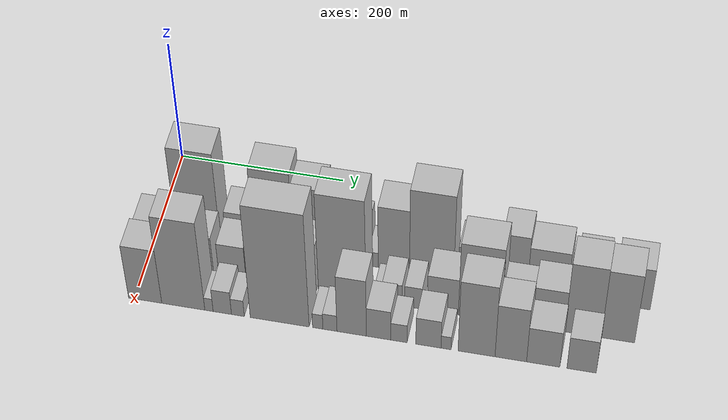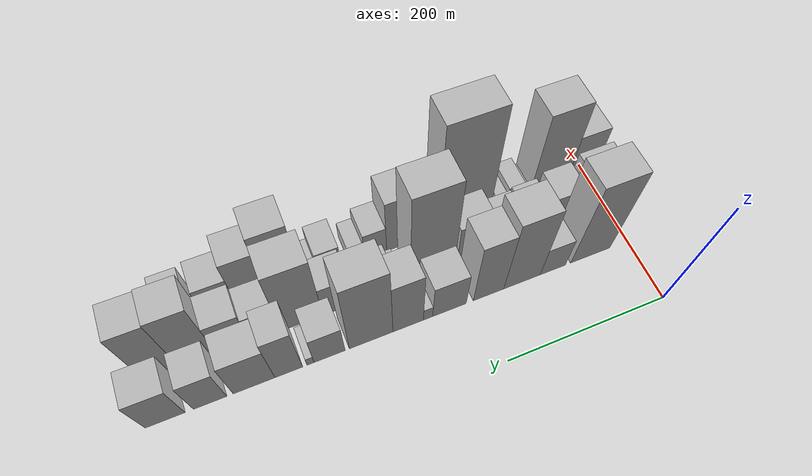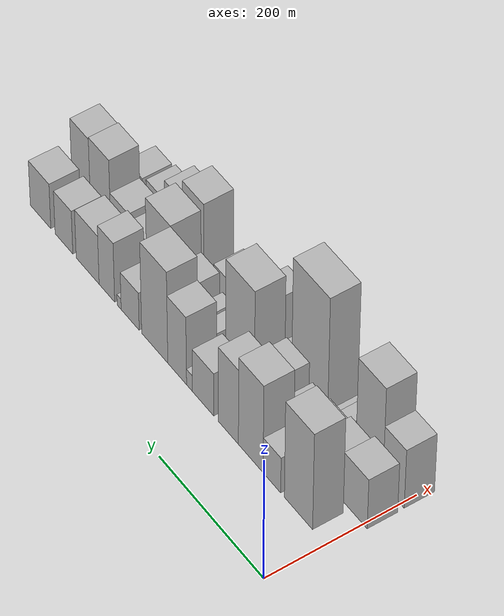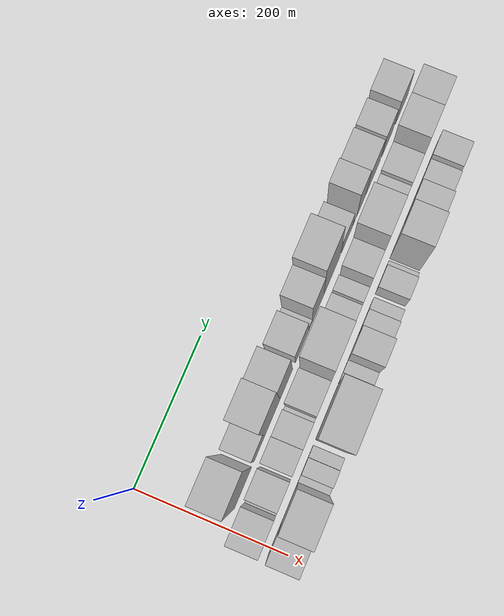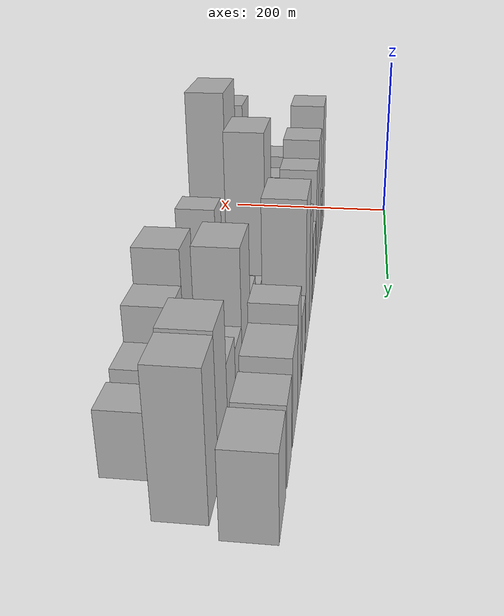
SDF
<sdf version="1.6">
 <world name="default">
  <model name="building_17">
   <static>1</static>
   <pose>100.0000 51.1494 0 0.000000 0.000000 0.000000</pose>
   <link name="link">
    <pose>0 0 81.00 0 0 0</pose>
    <collision name="collision"><geometry><box><size>40.0000 53.2891 162.0000</size></box></geometry></collision>
    <visual name="visual">
     <cast_shadows>0</cast_shadows>
     <geometry><box><size>40.0000 53.2891 162.0000</size></box></geometry>
     <material>
      <script>
       <uri>model://HANNAS_wall/materials/scripts</uri>
       <uri>model://HANNAS_wall/materials/textures</uri>
       <name>vrc/HANNAS_wall</name>
      </script>
     </material>
    </visual>
   </link>
  </model>
  <model name="building_18">
   <static>1</static>
   <pose>100.0000 101.5394 0 0.000000 0.000000 0.000000</pose>
   <link name="link">
    <pose>0 0 30.00 0 0 0</pose>
    <collision name="collision"><geometry><box><size>40.0000 33.4910 60.0000</size></box></geometry></collision>
    <visual name="visual">
     <cast_shadows>0</cast_shadows>
     <geometry><box><size>40.0000 33.4910 60.0000</size></box></geometry>
     <material>
      <script>
       <uri>model://HANNAS_wall/materials/scripts</uri>
       <uri>model://HANNAS_wall/materials/textures</uri>
       <name>vrc/HANNAS_wall</name>
      </script>
     </material>
    </visual>
   </link>
  </model>
  <model name="building_19">
   <static>1</static>
   <pose>100.0000 142.0829 0 0.000000 0.000000 0.000000</pose>
   <link name="link">
    <pose>0 0 73.50 0 0 0</pose>
    <collision name="collision"><geometry><box><size>40.0000 47.5960 147.0000</size></box></geometry></collision>
    <visual name="visual">
     <cast_shadows>0</cast_shadows>
     <geometry><box><size>40.0000 47.5960 147.0000</size></box></geometry>
     <material>
      <script>
       <uri>model://HANNAS_wall/materials/scripts</uri>
       <uri>model://HANNAS_wall/materials/textures</uri>
       <name>vrc/HANNAS_wall</name>
      </script>
     </material>
    </visual>
   </link>
  </model>
  <model name="building_20">
   <static>1</static>
   <pose>100.0000 185.3595 0 0.000000 0.000000 0.000000</pose>
   <link name="link">
    <pose>0 0 63.00 0 0 0</pose>
    <collision name="collision"><geometry><box><size>40.0000 38.9573 126.0000</size></box></geometry></collision>
    <visual name="visual">
     <cast_shadows>0</cast_shadows>
     <geometry><box><size>40.0000 38.9573 126.0000</size></box></geometry>
     <material>
      <script>
       <uri>model://HANNAS_wall/materials/scripts</uri>
       <uri>model://HANNAS_wall/materials/textures</uri>
       <name>vrc/HANNAS_wall</name>
      </script>
     </material>
    </visual>
   </link>
  </model>
  <model name="building_21">
   <static>1</static>
   <pose>100.0000 234.8111 0 0.000000 0.000000 0.000000</pose>
   <link name="link">
    <pose>0 0 36.00 0 0 0</pose>
    <collision name="collision"><geometry><box><size>40.0000 41.9458 72.0000</size></box></geometry></collision>
    <visual name="visual">
     <cast_shadows>0</cast_shadows>
     <geometry><box><size>40.0000 41.9458 72.0000</size></box></geometry>
     <material>
      <script>
       <uri>model://HANNAS_wall/materials/scripts</uri>
       <uri>model://HANNAS_wall/materials/textures</uri>
       <name>vrc/HANNAS_wall</name>
      </script>
     </material>
    </visual>
   </link>
  </model>
  <model name="building_22">
   <static>1</static>
   <pose>100.0000 261.5546 0 0.000000 0.000000 0.000000</pose>
   <link name="link">
    <pose>0 0 13.50 0 0 0</pose>
    <collision name="collision"><geometry><box><size>40.0000 11.5412 27.0000</size></box></geometry></collision>
    <visual name="visual">
     <cast_shadows>0</cast_shadows>
     <geometry><box><size>40.0000 11.5412 27.0000</size></box></geometry>
     <material>
      <script>
       <uri>model://HANNAS_wall/materials/scripts</uri>
       <uri>model://HANNAS_wall/materials/textures</uri>
       <name>vrc/HANNAS_wall</name>
      </script>
     </material>
    </visual>
   </link>
  </model>
  <model name="building_23">
   <static>1</static>
   <pose>100.0000 285.8989 0 0.000000 0.000000 0.000000</pose>
   <link name="link">
    <pose>0 0 57.00 0 0 0</pose>
    <collision name="collision"><geometry><box><size>40.0000 37.1474 114.0000</size></box></geometry></collision>
    <visual name="visual">
     <cast_shadows>0</cast_shadows>
     <geometry><box><size>40.0000 37.1474 114.0000</size></box></geometry>
     <material>
      <script>
       <uri>model://HANNAS_wall/materials/scripts</uri>
       <uri>model://HANNAS_wall/materials/textures</uri>
       <name>vrc/HANNAS_wall</name>
      </script>
     </material>
    </visual>
   </link>
  </model>
  <model name="building_24">
   <static>1</static>
   <pose>100.0000 330.6133 0 0.000000 0.000000 0.000000</pose>
   <link name="link">
    <pose>0 0 76.50 0 0 0</pose>
    <collision name="collision"><geometry><box><size>40.0000 52.2815 153.0000</size></box></geometry></collision>
    <visual name="visual">
     <cast_shadows>0</cast_shadows>
     <geometry><box><size>40.0000 52.2815 153.0000</size></box></geometry>
     <material>
      <script>
       <uri>model://HANNAS_wall/materials/scripts</uri>
       <uri>model://HANNAS_wall/materials/textures</uri>
       <name>vrc/HANNAS_wall</name>
      </script>
     </material>
    </visual>
   </link>
  </model>
  <model name="building_25">
   <static>1</static>
   <pose>100.0000 379.9582 0 0.000000 0.000000 0.000000</pose>
   <link name="link">
    <pose>0 0 31.50 0 0 0</pose>
    <collision name="collision"><geometry><box><size>40.0000 36.4083 63.0000</size></box></geometry></collision>
    <visual name="visual">
     <cast_shadows>0</cast_shadows>
     <geometry><box><size>40.0000 36.4083 63.0000</size></box></geometry>
     <material>
      <script>
       <uri>model://HANNAS_wall/materials/scripts</uri>
       <uri>model://HANNAS_wall/materials/textures</uri>
       <name>vrc/HANNAS_wall</name>
      </script>
     </material>
    </visual>
   </link>
  </model>
  <model name="building_26">
   <static>1</static>
   <pose>100.0000 402.2550 0 0.000000 0.000000 0.000000</pose>
   <link name="link">
    <pose>0 0 9.00 0 0 0</pose>
    <collision name="collision"><geometry><box><size>40.0000 8.1853 18.0000</size></box></geometry></collision>
    <visual name="visual">
     <cast_shadows>0</cast_shadows>
     <geometry><box><size>40.0000 8.1853 18.0000</size></box></geometry>
     <material>
      <script>
       <uri>model://HANNAS_wall/materials/scripts</uri>
       <uri>model://HANNAS_wall/materials/textures</uri>
       <name>vrc/HANNAS_wall</name>
      </script>
     </material>
    </visual>
   </link>
  </model>
  <model name="building_27">
   <static>1</static>
   <pose>100.0000 427.1888 0 0.000000 0.000000 0.000000</pose>
   <link name="link">
    <pose>0 0 49.50 0 0 0</pose>
    <collision name="collision"><geometry><box><size>40.0000 31.6823 99.0000</size></box></geometry></collision>
    <visual name="visual">
     <cast_shadows>0</cast_shadows>
     <geometry><box><size>40.0000 31.6823 99.0000</size></box></geometry>
     <material>
      <script>
       <uri>model://HANNAS_wall/materials/scripts</uri>
       <uri>model://HANNAS_wall/materials/textures</uri>
       <name>vrc/HANNAS_wall</name>
      </script>
     </material>
    </visual>
   </link>
  </model>
  <model name="building_28">
   <static>1</static>
   <pose>100.0000 466.5669 0 0.000000 0.000000 0.000000</pose>
   <link name="link">
    <pose>0 0 40.50 0 0 0</pose>
    <collision name="collision"><geometry><box><size>40.0000 47.0739 81.0000</size></box></geometry></collision>
    <visual name="visual">
     <cast_shadows>0</cast_shadows>
     <geometry><box><size>40.0000 47.0739 81.0000</size></box></geometry>
     <material>
      <script>
       <uri>model://HANNAS_wall/materials/scripts</uri>
       <uri>model://HANNAS_wall/materials/textures</uri>
       <name>vrc/HANNAS_wall</name>
      </script>
     </material>
    </visual>
   </link>
  </model>
  <model name="building_29">
   <static>1</static>
   <pose>100.0000 515.4584 0 0.000000 0.000000 0.000000</pose>
   <link name="link">
    <pose>0 0 36.00 0 0 0</pose>
    <collision name="collision"><geometry><box><size>40.0000 36.7091 72.0000</size></box></geometry></collision>
    <visual name="visual">
     <cast_shadows>0</cast_shadows>
     <geometry><box><size>40.0000 36.7091 72.0000</size></box></geometry>
     <material>
      <script>
       <uri>model://HANNAS_wall/materials/scripts</uri>
       <uri>model://HANNAS_wall/materials/textures</uri>
       <name>vrc/HANNAS_wall</name>
      </script>
     </material>
    </visual>
   </link>
  </model>
  <model name="building_30">
   <static>1</static>
   <pose>100.0000 564.2426 0 0.000000 0.000000 0.000000</pose>
   <link name="link">
    <pose>0 0 37.50 0 0 0</pose>
    <collision name="collision"><geometry><box><size>40.0000 42.8594 75.0000</size></box></geometry></collision>
    <visual name="visual">
     <cast_shadows>0</cast_shadows>
     <geometry><box><size>40.0000 42.8594 75.0000</size></box></geometry>
     <material>
      <script>
       <uri>model://HANNAS_wall/materials/scripts</uri>
       <uri>model://HANNAS_wall/materials/textures</uri>
       <name>vrc/HANNAS_wall</name>
      </script>
     </material>
    </visual>
   </link>
  </model>
  <model name="building_49">
   <static>1</static>
   <pose>149.0000 15.2305 0 0.000000 0.000000 0.000000</pose>
   <link name="link">
    <pose>0 0 42.00 0 0 0</pose>
    <collision name="collision"><geometry><box><size>40.0000 45.3596 84.0000</size></box></geometry></collision>
    <visual name="visual">
     <cast_shadows>0</cast_shadows>
     <geometry><box><size>40.0000 45.3596 84.0000</size></box></geometry>
     <material>
      <script>
       <uri>model://HANNAS_wall/materials/scripts</uri>
       <uri>model://HANNAS_wall/materials/textures</uri>
       <name>vrc/HANNAS_wall</name>
      </script>
     </material>
    </visual>
   </link>
  </model>
  <model name="building_50">
   <static>1</static>
   <pose>149.0000 41.6079 0 0.000000 0.000000 0.000000</pose>
   <link name="link">
    <pose>0 0 9.00 0 0 0</pose>
    <collision name="collision"><geometry><box><size>40.0000 7.3952 18.0000</size></box></geometry></collision>
    <visual name="visual">
     <cast_shadows>0</cast_shadows>
     <geometry><box><size>40.0000 7.3952 18.0000</size></box></geometry>
     <material>
      <script>
       <uri>model://HANNAS_wall/materials/scripts</uri>
       <uri>model://HANNAS_wall/materials/textures</uri>
       <name>vrc/HANNAS_wall</name>
      </script>
     </material>
    </visual>
   </link>
  </model>
  <model name="building_51">
   <static>1</static>
   <pose>149.0000 63.8269 0 0.000000 0.000000 0.000000</pose>
   <link name="link">
    <pose>0 0 36.00 0 0 0</pose>
    <collision name="collision"><geometry><box><size>40.0000 37.0427 72.0000</size></box></geometry></collision>
    <visual name="visual">
     <cast_shadows>0</cast_shadows>
     <geometry><box><size>40.0000 37.0427 72.0000</size></box></geometry>
     <material>
      <script>
       <uri>model://HANNAS_wall/materials/scripts</uri>
       <uri>model://HANNAS_wall/materials/textures</uri>
       <name>vrc/HANNAS_wall</name>
      </script>
     </material>
    </visual>
   </link>
  </model>
  <model name="building_52">
   <static>1</static>
   <pose>149.0000 104.5426 0 0.000000 0.000000 0.000000</pose>
   <link name="link">
    <pose>0 0 31.50 0 0 0</pose>
    <collision name="collision"><geometry><box><size>40.0000 32.3889 63.0000</size></box></geometry></collision>
    <visual name="visual">
     <cast_shadows>0</cast_shadows>
     <geometry><box><size>40.0000 32.3889 63.0000</size></box></geometry>
     <material>
      <script>
       <uri>model://HANNAS_wall/materials/scripts</uri>
       <uri>model://HANNAS_wall/materials/textures</uri>
       <name>vrc/HANNAS_wall</name>
      </script>
     </material>
    </visual>
   </link>
  </model>
  <model name="building_53">
   <static>1</static>
   <pose>149.0000 137.4647 0 0.000000 0.000000 0.000000</pose>
   <link name="link">
    <pose>0 0 28.50 0 0 0</pose>
    <collision name="collision"><geometry><box><size>40.0000 33.4552 57.0000</size></box></geometry></collision>
    <visual name="visual">
     <cast_shadows>0</cast_shadows>
     <geometry><box><size>40.0000 33.4552 57.0000</size></box></geometry>
     <material>
      <script>
       <uri>model://HANNAS_wall/materials/scripts</uri>
       <uri>model://HANNAS_wall/materials/textures</uri>
       <name>vrc/HANNAS_wall</name>
      </script>
     </material>
    </visual>
   </link>
  </model>
  <model name="building_54">
   <static>1</static>
   <pose>149.0000 157.3524 0 0.000000 0.000000 0.000000</pose>
   <link name="link">
    <pose>0 0 7.50 0 0 0</pose>
    <collision name="collision"><geometry><box><size>40.0000 6.3202 15.0000</size></box></geometry></collision>
    <visual name="visual">
     <cast_shadows>0</cast_shadows>
     <geometry><box><size>40.0000 6.3202 15.0000</size></box></geometry>
     <material>
      <script>
       <uri>model://HANNAS_wall/materials/scripts</uri>
       <uri>model://HANNAS_wall/materials/textures</uri>
       <name>vrc/HANNAS_wall</name>
      </script>
     </material>
    </visual>
   </link>
  </model>
  <model name="building_55">
   <static>1</static>
   <pose>149.0000 182.1373 0 0.000000 0.000000 0.000000</pose>
   <link name="link">
    <pose>0 0 42.00 0 0 0</pose>
    <collision name="collision"><geometry><box><size>40.0000 43.2496 84.0000</size></box></geometry></collision>
    <visual name="visual">
     <cast_shadows>0</cast_shadows>
     <geometry><box><size>40.0000 43.2496 84.0000</size></box></geometry>
     <material>
      <script>
       <uri>model://HANNAS_wall/materials/scripts</uri>
       <uri>model://HANNAS_wall/materials/textures</uri>
       <name>vrc/HANNAS_wall</name>
      </script>
     </material>
    </visual>
   </link>
  </model>
  <model name="building_56">
   <static>1</static>
   <pose>149.0000 234.6852 0 0.000000 0.000000 0.000000</pose>
   <link name="link">
    <pose>0 0 91.50 0 0 0</pose>
    <collision name="collision"><geometry><box><size>40.0000 55.8464 183.0000</size></box></geometry></collision>
    <visual name="visual">
     <cast_shadows>0</cast_shadows>
     <geometry><box><size>40.0000 55.8464 183.0000</size></box></geometry>
     <material>
      <script>
       <uri>model://HANNAS_wall/materials/scripts</uri>
       <uri>model://HANNAS_wall/materials/textures</uri>
       <name>vrc/HANNAS_wall</name>
      </script>
     </material>
    </visual>
   </link>
  </model>
  <model name="building_57">
   <static>1</static>
   <pose>149.0000 276.7256 0 0.000000 0.000000 0.000000</pose>
   <link name="link">
    <pose>0 0 10.50 0 0 0</pose>
    <collision name="collision"><geometry><box><size>40.0000 10.2343 21.0000</size></box></geometry></collision>
    <visual name="visual">
     <cast_shadows>0</cast_shadows>
     <geometry><box><size>40.0000 10.2343 21.0000</size></box></geometry>
     <material>
      <script>
       <uri>model://HANNAS_wall/materials/scripts</uri>
       <uri>model://HANNAS_wall/materials/textures</uri>
       <name>vrc/HANNAS_wall</name>
      </script>
     </material>
    </visual>
   </link>
  </model>
  <model name="building_58">
   <static>1</static>
   <pose>149.0000 293.4140 0 0.000000 0.000000 0.000000</pose>
   <link name="link">
    <pose>0 0 19.50 0 0 0</pose>
    <collision name="collision"><geometry><box><size>40.0000 23.1425 39.0000</size></box></geometry></collision>
    <visual name="visual">
     <cast_shadows>0</cast_shadows>
     <geometry><box><size>40.0000 23.1425 39.0000</size></box></geometry>
     <material>
      <script>
       <uri>model://HANNAS_wall/materials/scripts</uri>
       <uri>model://HANNAS_wall/materials/textures</uri>
       <name>vrc/HANNAS_wall</name>
      </script>
     </material>
    </visual>
   </link>
  </model>
  <model name="building_59">
   <static>1</static>
   <pose>149.0000 318.1660 0 0.000000 0.000000 0.000000</pose>
   <link name="link">
    <pose>0 0 19.50 0 0 0</pose>
    <collision name="collision"><geometry><box><size>40.0000 20.3615 39.0000</size></box></geometry></collision>
    <visual name="visual">
     <cast_shadows>0</cast_shadows>
     <geometry><box><size>40.0000 20.3615 39.0000</size></box></geometry>
     <material>
      <script>
       <uri>model://HANNAS_wall/materials/scripts</uri>
       <uri>model://HANNAS_wall/materials/textures</uri>
       <name>vrc/HANNAS_wall</name>
      </script>
     </material>
    </visual>
   </link>
  </model>
  <model name="building_60">
   <static>1</static>
   <pose>149.0000 352.5141 0 0.000000 0.000000 0.000000</pose>
   <link name="link">
    <pose>0 0 33.00 0 0 0</pose>
    <collision name="collision"><geometry><box><size>40.0000 36.3346 66.0000</size></box></geometry></collision>
    <visual name="visual">
     <cast_shadows>0</cast_shadows>
     <geometry><box><size>40.0000 36.3346 66.0000</size></box></geometry>
     <material>
      <script>
       <uri>model://HANNAS_wall/materials/scripts</uri>
       <uri>model://HANNAS_wall/materials/textures</uri>
       <name>vrc/HANNAS_wall</name>
      </script>
     </material>
    </visual>
   </link>
  </model>
  <model name="building_61">
   <static>1</static>
   <pose>149.0000 395.5475 0 0.000000 0.000000 0.000000</pose>
   <link name="link">
    <pose>0 0 67.50 0 0 0</pose>
    <collision name="collision"><geometry><box><size>40.0000 49.7322 135.0000</size></box></geometry></collision>
    <visual name="visual">
     <cast_shadows>0</cast_shadows>
     <geometry><box><size>40.0000 49.7322 135.0000</size></box></geometry>
     <material>
      <script>
       <uri>model://HANNAS_wall/materials/scripts</uri>
       <uri>model://HANNAS_wall/materials/textures</uri>
       <name>vrc/HANNAS_wall</name>
      </script>
     </material>
    </visual>
   </link>
  </model>
  <model name="building_62">
   <static>1</static>
   <pose>149.0000 438.1103 0 0.000000 0.000000 0.000000</pose>
   <link name="link">
    <pose>0 0 31.50 0 0 0</pose>
    <collision name="collision"><geometry><box><size>40.0000 35.3934 63.0000</size></box></geometry></collision>
    <visual name="visual">
     <cast_shadows>0</cast_shadows>
     <geometry><box><size>40.0000 35.3934 63.0000</size></box></geometry>
     <material>
      <script>
       <uri>model://HANNAS_wall/materials/scripts</uri>
       <uri>model://HANNAS_wall/materials/textures</uri>
       <name>vrc/HANNAS_wall</name>
      </script>
     </material>
    </visual>
   </link>
  </model>
  <model name="building_63">
   <static>1</static>
   <pose>149.0000 474.8910 0 0.000000 0.000000 0.000000</pose>
   <link name="link">
    <pose>0 0 37.50 0 0 0</pose>
    <collision name="collision"><geometry><box><size>40.0000 38.1680 75.0000</size></box></geometry></collision>
    <visual name="visual">
     <cast_shadows>0</cast_shadows>
     <geometry><box><size>40.0000 38.1680 75.0000</size></box></geometry>
     <material>
      <script>
       <uri>model://HANNAS_wall/materials/scripts</uri>
       <uri>model://HANNAS_wall/materials/textures</uri>
       <name>vrc/HANNAS_wall</name>
      </script>
     </material>
    </visual>
   </link>
  </model>
  <model name="building_64">
   <static>1</static>
   <pose>149.0000 514.7338 0 0.000000 0.000000 0.000000</pose>
   <link name="link">
    <pose>0 0 64.50 0 0 0</pose>
    <collision name="collision"><geometry><box><size>40.0000 41.5177 129.0000</size></box></geometry></collision>
    <visual name="visual">
     <cast_shadows>0</cast_shadows>
     <geometry><box><size>40.0000 41.5177 129.0000</size></box></geometry>
     <material>
      <script>
       <uri>model://HANNAS_wall/materials/scripts</uri>
       <uri>model://HANNAS_wall/materials/textures</uri>
       <name>vrc/HANNAS_wall</name>
      </script>
     </material>
    </visual>
   </link>
  </model>
  <model name="building_65">
   <static>1</static>
   <pose>149.0000 554.5272 0 0.000000 0.000000 0.000000</pose>
   <link name="link">
    <pose>0 0 63.00 0 0 0</pose>
    <collision name="collision"><geometry><box><size>40.0000 38.0690 126.0000</size></box></geometry></collision>
    <visual name="visual">
     <cast_shadows>0</cast_shadows>
     <geometry><box><size>40.0000 38.0690 126.0000</size></box></geometry>
     <material>
      <script>
       <uri>model://HANNAS_wall/materials/scripts</uri>
       <uri>model://HANNAS_wall/materials/textures</uri>
       <name>vrc/HANNAS_wall</name>
      </script>
     </material>
    </visual>
   </link>
  </model>
  <model name="building_80">
   <static>1</static>
   <pose>198.0000 12.9632 0 0.000000 0.000000 0.000000</pose>
   <link name="link">
    <pose>0 0 49.50 0 0 0</pose>
    <collision name="collision"><geometry><box><size>40.0000 39.5652 99.0000</size></box></geometry></collision>
    <visual name="visual">
     <cast_shadows>0</cast_shadows>
     <geometry><box><size>40.0000 39.5652 99.0000</size></box></geometry>
     <material>
      <script>
       <uri>model://HANNAS_wall/materials/scripts</uri>
       <uri>model://HANNAS_wall/materials/textures</uri>
       <name>vrc/HANNAS_wall</name>
      </script>
     </material>
    </visual>
   </link>
  </model>
  <model name="building_81">
   <static>1</static>
   <pose>198.0000 58.2580 0 0.000000 0.000000 0.000000</pose>
   <link name="link">
    <pose>0 0 81.00 0 0 0</pose>
    <collision name="collision"><geometry><box><size>40.0000 51.0245 162.0000</size></box></geometry></collision>
    <visual name="visual">
     <cast_shadows>0</cast_shadows>
     <geometry><box><size>40.0000 51.0245 162.0000</size></box></geometry>
     <material>
      <script>
       <uri>model://HANNAS_wall/materials/scripts</uri>
       <uri>model://HANNAS_wall/materials/textures</uri>
       <name>vrc/HANNAS_wall</name>
      </script>
     </material>
    </visual>
   </link>
  </model>
  <model name="building_82">
   <static>1</static>
   <pose>198.0000 88.6813 0 0.000000 0.000000 0.000000</pose>
   <link name="link">
    <pose>0 0 12.00 0 0 0</pose>
    <collision name="collision"><geometry><box><size>40.0000 9.8221 24.0000</size></box></geometry></collision>
    <visual name="visual">
     <cast_shadows>0</cast_shadows>
     <geometry><box><size>40.0000 9.8221 24.0000</size></box></geometry>
     <material>
      <script>
       <uri>model://HANNAS_wall/materials/scripts</uri>
       <uri>model://HANNAS_wall/materials/textures</uri>
       <name>vrc/HANNAS_wall</name>
      </script>
     </material>
    </visual>
   </link>
  </model>
  <model name="building_83">
   <static>1</static>
   <pose>198.0000 104.4065 0 0.000000 0.000000 0.000000</pose>
   <link name="link">
    <pose>0 0 21.00 0 0 0</pose>
    <collision name="collision"><geometry><box><size>40.0000 21.6282 42.0000</size></box></geometry></collision>
    <visual name="visual">
     <cast_shadows>0</cast_shadows>
     <geometry><box><size>40.0000 21.6282 42.0000</size></box></geometry>
     <material>
      <script>
       <uri>model://HANNAS_wall/materials/scripts</uri>
       <uri>model://HANNAS_wall/materials/textures</uri>
       <name>vrc/HANNAS_wall</name>
      </script>
     </material>
    </visual>
   </link>
  </model>
  <model name="building_84">
   <static>1</static>
   <pose>198.0000 122.7854 0 0.000000 0.000000 0.000000</pose>
   <link name="link">
    <pose>0 0 15.00 0 0 0</pose>
    <collision name="collision"><geometry><box><size>40.0000 15.1296 30.0000</size></box></geometry></collision>
    <visual name="visual">
     <cast_shadows>0</cast_shadows>
     <geometry><box><size>40.0000 15.1296 30.0000</size></box></geometry>
     <material>
      <script>
       <uri>model://HANNAS_wall/materials/scripts</uri>
       <uri>model://HANNAS_wall/materials/textures</uri>
       <name>vrc/HANNAS_wall</name>
      </script>
     </material>
    </visual>
   </link>
  </model>
  <model name="building_85">
   <static>1</static>
   <pose>198.0000 171.8955 0 0.000000 0.000000 0.000000</pose>
   <link name="link">
    <pose>0 0 103.50 0 0 0</pose>
    <collision name="collision"><geometry><box><size>40.0000 69.0907 207.0000</size></box></geometry></collision>
    <visual name="visual">
     <cast_shadows>0</cast_shadows>
     <geometry><box><size>40.0000 69.0907 207.0000</size></box></geometry>
     <material>
      <script>
       <uri>model://HANNAS_wall/materials/scripts</uri>
       <uri>model://HANNAS_wall/materials/textures</uri>
       <name>vrc/HANNAS_wall</name>
      </script>
     </material>
    </visual>
   </link>
  </model>
  <model name="building_86">
   <static>1</static>
   <pose>198.0000 216.4696 0 0.000000 0.000000 0.000000</pose>
   <link name="link">
    <pose>0 0 13.50 0 0 0</pose>
    <collision name="collision"><geometry><box><size>40.0000 12.0575 27.0000</size></box></geometry></collision>
    <visual name="visual">
     <cast_shadows>0</cast_shadows>
     <geometry><box><size>40.0000 12.0575 27.0000</size></box></geometry>
     <material>
      <script>
       <uri>model://HANNAS_wall/materials/scripts</uri>
       <uri>model://HANNAS_wall/materials/textures</uri>
       <name>vrc/HANNAS_wall</name>
      </script>
     </material>
    </visual>
   </link>
  </model>
  <model name="building_87">
   <static>1</static>
   <pose>198.0000 230.6929 0 0.000000 0.000000 0.000000</pose>
   <link name="link">
    <pose>0 0 15.00 0 0 0</pose>
    <collision name="collision"><geometry><box><size>40.0000 16.3892 30.0000</size></box></geometry></collision>
    <visual name="visual">
     <cast_shadows>0</cast_shadows>
     <geometry><box><size>40.0000 16.3892 30.0000</size></box></geometry>
     <material>
      <script>
       <uri>model://HANNAS_wall/materials/scripts</uri>
       <uri>model://HANNAS_wall/materials/textures</uri>
       <name>vrc/HANNAS_wall</name>
      </script>
     </material>
    </visual>
   </link>
  </model>
  <model name="building_88">
   <static>1</static>
   <pose>198.0000 256.0140 0 0.000000 0.000000 0.000000</pose>
   <link name="link">
    <pose>0 0 52.50 0 0 0</pose>
    <collision name="collision"><geometry><box><size>40.0000 34.2530 105.0000</size></box></geometry></collision>
    <visual name="visual">
     <cast_shadows>0</cast_shadows>
     <geometry><box><size>40.0000 34.2530 105.0000</size></box></geometry>
     <material>
      <script>
       <uri>model://HANNAS_wall/materials/scripts</uri>
       <uri>model://HANNAS_wall/materials/textures</uri>
       <name>vrc/HANNAS_wall</name>
      </script>
     </material>
    </visual>
   </link>
  </model>
  <model name="building_89">
   <static>1</static>
   <pose>198.0000 287.2722 0 0.000000 0.000000 0.000000</pose>
   <link name="link">
    <pose>0 0 27.00 0 0 0</pose>
    <collision name="collision"><geometry><box><size>40.0000 28.2633 54.0000</size></box></geometry></collision>
    <visual name="visual">
     <cast_shadows>0</cast_shadows>
     <geometry><box><size>40.0000 28.2633 54.0000</size></box></geometry>
     <material>
      <script>
       <uri>model://HANNAS_wall/materials/scripts</uri>
       <uri>model://HANNAS_wall/materials/textures</uri>
       <name>vrc/HANNAS_wall</name>
      </script>
     </material>
    </visual>
   </link>
  </model>
  <model name="building_90">
   <static>1</static>
   <pose>198.0000 310.7993 0 0.000000 0.000000 0.000000</pose>
   <link name="link">
    <pose>0 0 16.50 0 0 0</pose>
    <collision name="collision"><geometry><box><size>40.0000 18.7908 33.0000</size></box></geometry></collision>
    <visual name="visual">
     <cast_shadows>0</cast_shadows>
     <geometry><box><size>40.0000 18.7908 33.0000</size></box></geometry>
     <material>
      <script>
       <uri>model://HANNAS_wall/materials/scripts</uri>
       <uri>model://HANNAS_wall/materials/textures</uri>
       <name>vrc/HANNAS_wall</name>
      </script>
     </material>
    </visual>
   </link>
  </model>
  <model name="building_91">
   <static>1</static>
   <pose>198.0000 344.7604 0 0.000000 0.000000 0.000000</pose>
   <link name="link">
    <pose>0 0 25.50 0 0 0</pose>
    <collision name="collision"><geometry><box><size>40.0000 29.1315 51.0000</size></box></geometry></collision>
    <visual name="visual">
     <cast_shadows>0</cast_shadows>
     <geometry><box><size>40.0000 29.1315 51.0000</size></box></geometry>
     <material>
      <script>
       <uri>model://HANNAS_wall/materials/scripts</uri>
       <uri>model://HANNAS_wall/materials/textures</uri>
       <name>vrc/HANNAS_wall</name>
      </script>
     </material>
    </visual>
   </link>
  </model>
  <model name="building_92">
   <static>1</static>
   <pose>198.0000 365.0516 0 0.000000 0.000000 0.000000</pose>
   <link name="link">
    <pose>0 0 12.00 0 0 0</pose>
    <collision name="collision"><geometry><box><size>40.0000 11.4508 24.0000</size></box></geometry></collision>
    <visual name="visual">
     <cast_shadows>0</cast_shadows>
     <geometry><box><size>40.0000 11.4508 24.0000</size></box></geometry>
     <material>
      <script>
       <uri>model://HANNAS_wall/materials/scripts</uri>
       <uri>model://HANNAS_wall/materials/textures</uri>
       <name>vrc/HANNAS_wall</name>
      </script>
     </material>
    </visual>
   </link>
  </model>
  <model name="building_93">
   <static>1</static>
   <pose>198.0000 399.9521 0 0.000000 0.000000 0.000000</pose>
   <link name="link">
    <pose>0 0 66.00 0 0 0</pose>
    <collision name="collision"><geometry><box><size>40.0000 42.3502 132.0000</size></box></geometry></collision>
    <visual name="visual">
     <cast_shadows>0</cast_shadows>
     <geometry><box><size>40.0000 42.3502 132.0000</size></box></geometry>
     <material>
      <script>
       <uri>model://HANNAS_wall/materials/scripts</uri>
       <uri>model://HANNAS_wall/materials/textures</uri>
       <name>vrc/HANNAS_wall</name>
      </script>
     </material>
    </visual>
   </link>
  </model>
  <model name="building_94">
   <static>1</static>
   <pose>198.0000 439.1427 0 0.000000 0.000000 0.000000</pose>
   <link name="link">
    <pose>0 0 49.50 0 0 0</pose>
    <collision name="collision"><geometry><box><size>40.0000 36.0310 99.0000</size></box></geometry></collision>
    <visual name="visual">
     <cast_shadows>0</cast_shadows>
     <geometry><box><size>40.0000 36.0310 99.0000</size></box></geometry>
     <material>
      <script>
       <uri>model://HANNAS_wall/materials/scripts</uri>
       <uri>model://HANNAS_wall/materials/textures</uri>
       <name>vrc/HANNAS_wall</name>
      </script>
     </material>
    </visual>
   </link>
  </model>
  <model name="building_95">
   <static>1</static>
   <pose>198.0000 476.0464 0 0.000000 0.000000 0.000000</pose>
   <link name="link">
    <pose>0 0 33.00 0 0 0</pose>
    <collision name="collision"><geometry><box><size>40.0000 37.7764 66.0000</size></box></geometry></collision>
    <visual name="visual">
     <cast_shadows>0</cast_shadows>
     <geometry><box><size>40.0000 37.7764 66.0000</size></box></geometry>
     <material>
      <script>
       <uri>model://HANNAS_wall/materials/scripts</uri>
       <uri>model://HANNAS_wall/materials/textures</uri>
       <name>vrc/HANNAS_wall</name>
      </script>
     </material>
    </visual>
   </link>
  </model>
  <model name="building_96">
   <static>1</static>
   <pose>198.0000 519.5446 0 0.000000 0.000000 0.000000</pose>
   <link name="link">
    <pose>0 0 30.00 0 0 0</pose>
    <collision name="collision"><geometry><box><size>40.0000 33.2199 60.0000</size></box></geometry></collision>
    <visual name="visual">
     <cast_shadows>0</cast_shadows>
     <geometry><box><size>40.0000 33.2199 60.0000</size></box></geometry>
     <material>
      <script>
       <uri>model://HANNAS_wall/materials/scripts</uri>
       <uri>model://HANNAS_wall/materials/textures</uri>
       <name>vrc/HANNAS_wall</name>
      </script>
     </material>
    </visual>
   </link>
  </model>
 </world>
</sdf>
